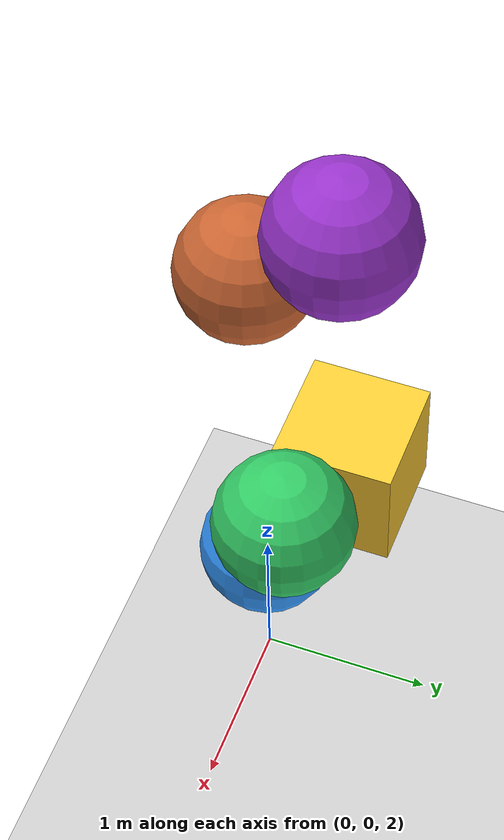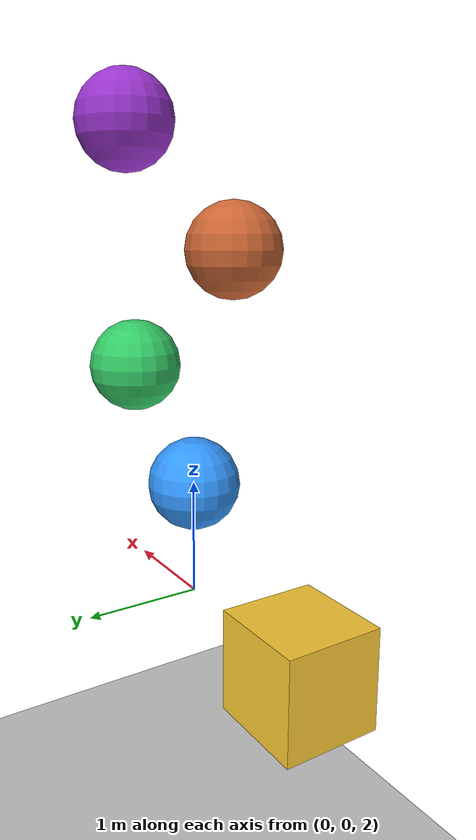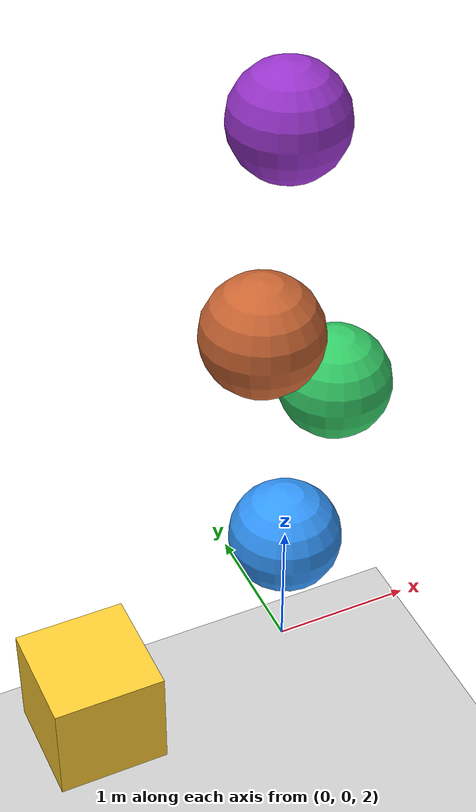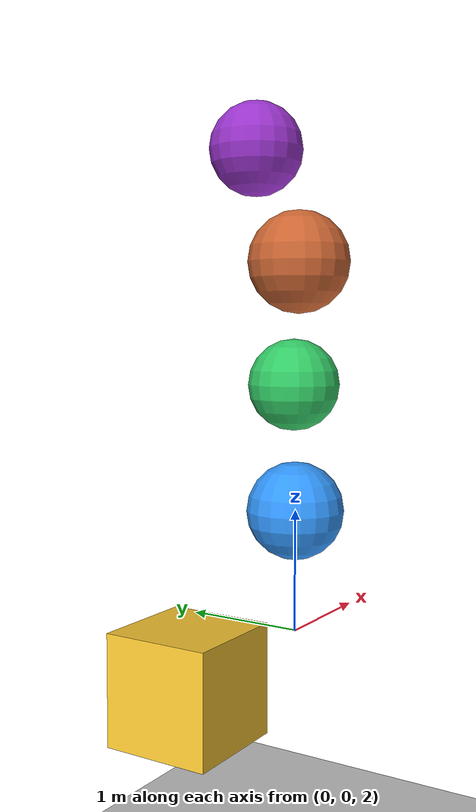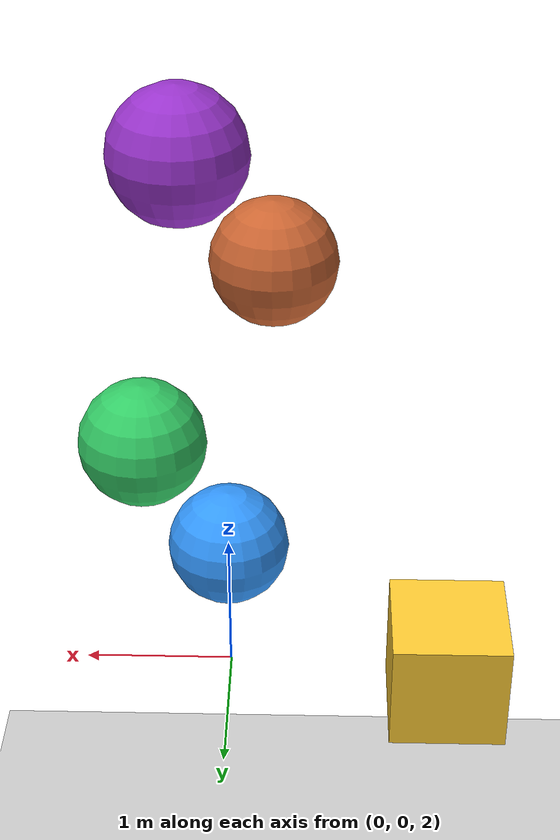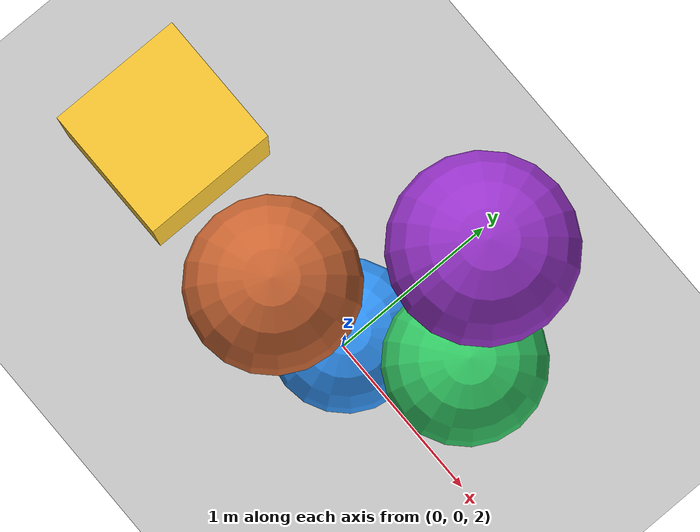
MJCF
<mujoco model="contact_debug">
            <option gravity="0 0 -9.81" timestep="0.002"/>
            <worldbody>
                <!-- Ground plane -->
                <geom name="ground" type="plane" size="10 10 0.1" rgba="0.8 0.8 0.8 1"/>

                <!-- Multiple falling spheres at different heights -->
                <body name="sphere1" pos="0 0 3">
                    <freejoint name="sphere1_joint"/>
                    <geom name="sphere1_geom" type="sphere" size="0.4" mass="1.0" rgba="0.2 0.6 1.0 1"/>
                </body>

                <body name="sphere2" pos="0.5 0.3 4">
                    <freejoint name="sphere2_joint"/>
                    <geom name="sphere2_geom" type="sphere" size="0.4" mass="1.0" rgba="0.2 0.8 0.4 1"/>
                </body>

                <body name="sphere3" pos="-0.3 -0.2 5">
                    <freejoint name="sphere3_joint"/>
                    <geom name="sphere3_geom" type="sphere" size="0.4" mass="1.0" rgba="0.8 0.4 0.2 1"/>
                </body>

                <body name="sphere4" pos="0.2 0.5 6">
                    <freejoint name="sphere4_joint"/>
                    <geom name="sphere4_geom" type="sphere" size="0.4" mass="1.0" rgba="0.6 0.2 0.8 1"/>
                </body>

                <!-- A box to demonstrate box-sphere contacts -->
                <body name="box1" pos="-1.5 0 2">
                    <freejoint name="box1_joint"/>
                    <geom name="box1_geom" type="box" size="0.4 0.4 0.4" mass="2.0" rgba="1.0 0.8 0.2 1"/>
                </body>
            </worldbody>
        </mujoco>
